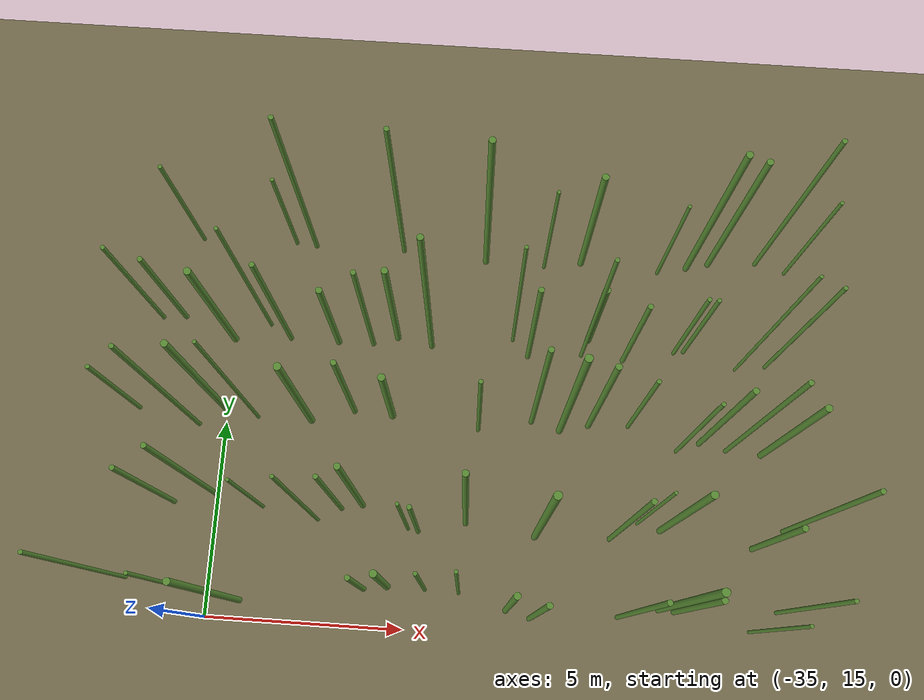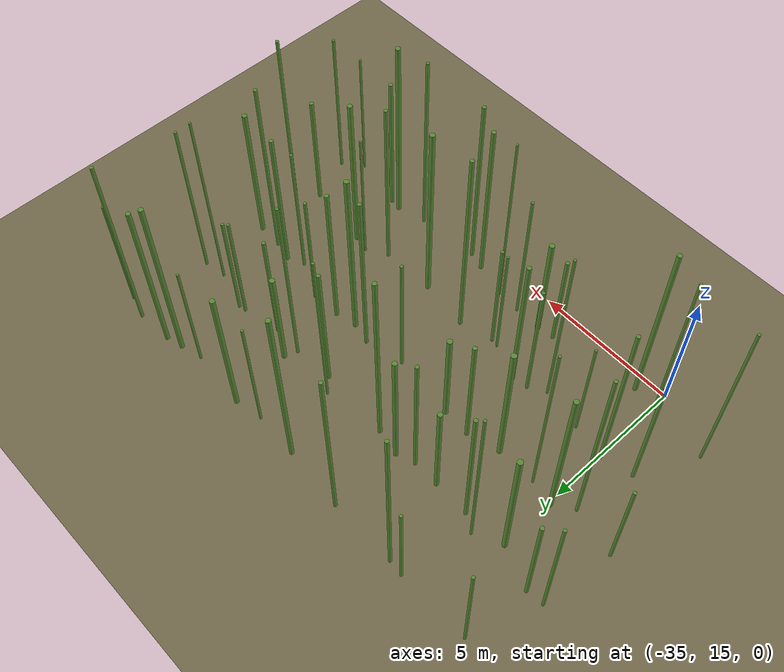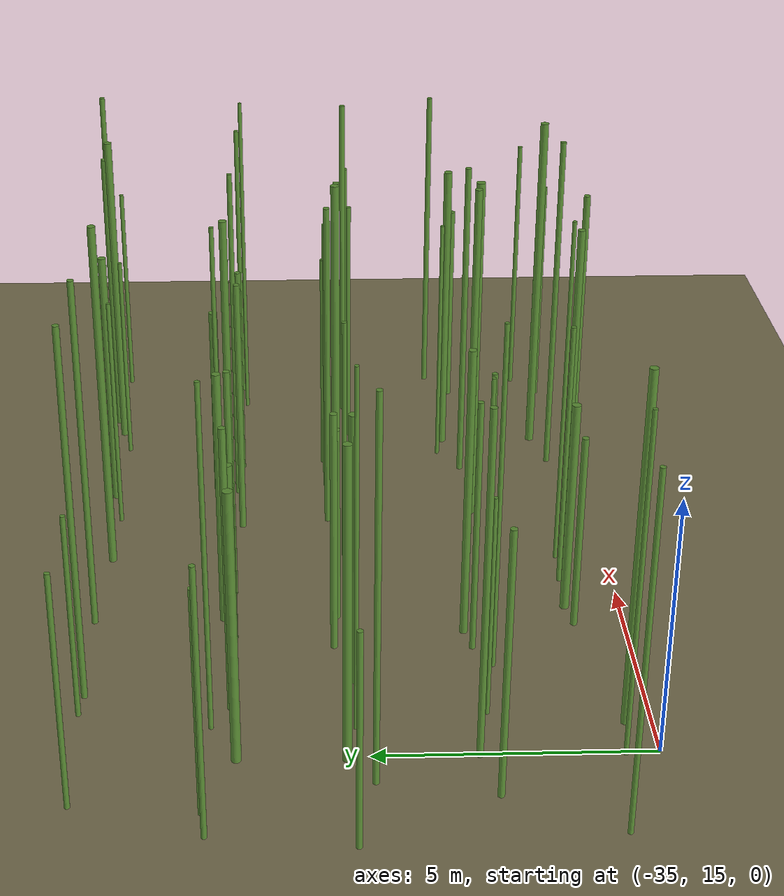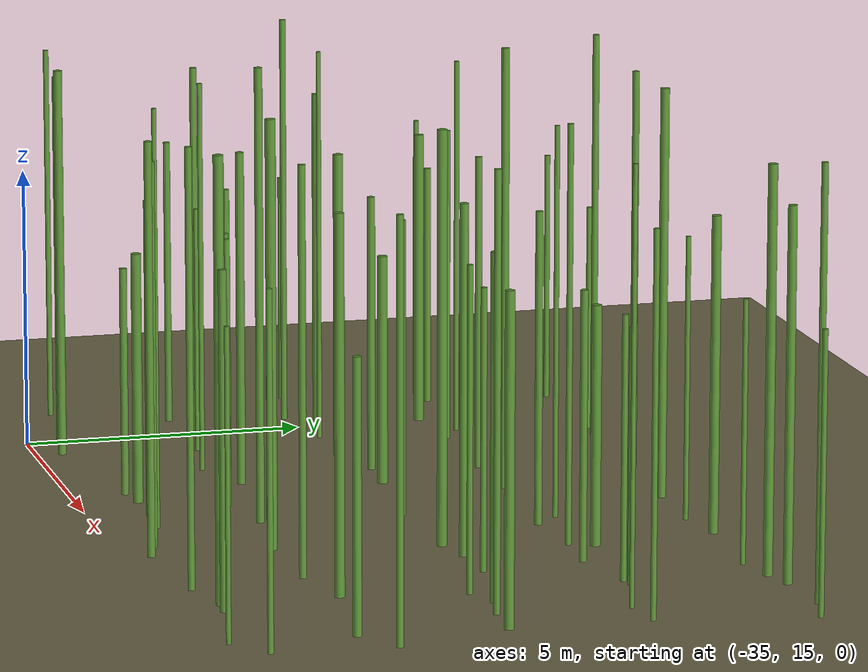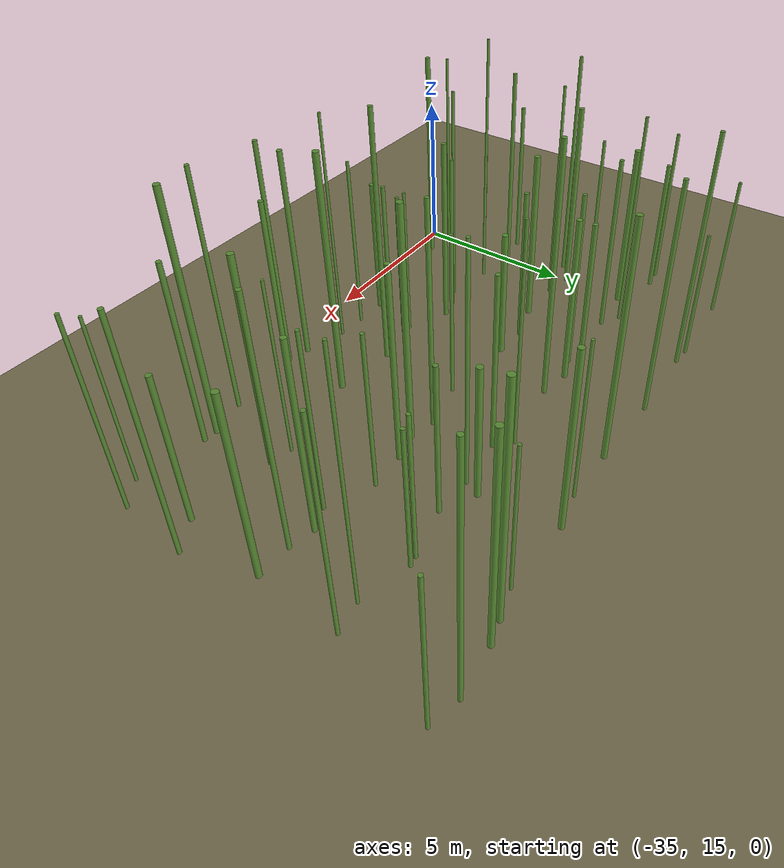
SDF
<sdf version="1.9">
 <world name="bamboo_field">
  <model name="ground_plane">
   <static>true</static>
   <link name="link">
    <collision name="collision">
     <geometry><plane><normal>0 0 1</normal><size>80.0 80.0</size></plane></geometry>
    </collision>
    <visual name="visual">
     <geometry><plane><normal>0 0 1</normal><size>80.0 80.0</size></plane></geometry>
     <material><diffuse>0.45 0.42 0.30 1</diffuse></material>
    </visual>
   </link>
  </model>
  <model name="bamboo_1408">
   <static>true</static>
   <pose>-37.101715336450795 15.8547783717082 3.393380171608686 0 0 0</pose>
   <link name="link">
    <collision name="collision">
     <geometry>
      <cylinder><radius>0.048034457998569986</radius><length>6.786760343217372</length></cylinder>
     </geometry>
    </collision>
    <visual name="visual">
     <geometry>
      <cylinder><radius>0.048034457998569986</radius><length>6.786760343217372</length></cylinder>
     </geometry>
     <material><diffuse>0.35 0.55 0.20 1</diffuse><specular>0.1 0.1 0.1 1</specular></material>
    </visual>
   </link>
  </model>
  <model name="bamboo_1409">
   <static>true</static>
   <pose>-35.04955720165409 15.5963601683068 3.3359249767435992 0 0 0</pose>
   <link name="link">
    <collision name="collision">
     <geometry>
      <cylinder><radius>0.043890435666860524</radius><length>6.6718499534871984</length></cylinder>
     </geometry>
    </collision>
    <visual name="visual">
     <geometry>
      <cylinder><radius>0.043890435666860524</radius><length>6.6718499534871984</length></cylinder>
     </geometry>
     <material><diffuse>0.35 0.55 0.20 1</diffuse><specular>0.1 0.1 0.1 1</specular></material>
    </visual>
   </link>
  </model>
  <model name="bamboo_1410">
   <static>true</static>
   <pose>-34.16500798220895 15.475101761687869 3.473438571887115 0 0 0</pose>
   <link name="link">
    <collision name="collision">
     <geometry>
      <cylinder><radius>0.07714181737051715</radius><length>6.94687714377423</length></cylinder>
     </geometry>
    </collision>
    <visual name="visual">
     <geometry>
      <cylinder><radius>0.07714181737051715</radius><length>6.94687714377423</length></cylinder>
     </geometry>
     <material><diffuse>0.35 0.55 0.20 1</diffuse><specular>0.1 0.1 0.1 1</specular></material>
    </visual>
   </link>
  </model>
  <model name="bamboo_1411">
   <static>true</static>
   <pose>-31.054002791299553 15.952504945509727 2.00735378247855 0 0 0</pose>
   <link name="link">
    <collision name="collision">
     <geometry><cylinder><radius>0.06603458491052912</radius><length>4.0147075649571</length></cylinder></geometry>
    </collision>
    <visual name="visual">
     <geometry><cylinder><radius>0.06603458491052912</radius><length>4.0147075649571</length></cylinder></geometry>
     <material><diffuse>0.35 0.55 0.20 1</diffuse><specular>0.1 0.1 0.1 1</specular></material>
    </visual>
   </link>
  </model>
  <model name="bamboo_1412">
   <static>true</static>
   <pose>-30.466071246106168 16.05506975819433 2.1948921089840825 0 0 0</pose>
   <link name="link">
    <collision name="collision">
     <geometry>
      <cylinder><radius>0.08847287557213641</radius><length>4.389784217968165</length></cylinder>
     </geometry>
    </collision>
    <visual name="visual">
     <geometry>
      <cylinder><radius>0.08847287557213641</radius><length>4.389784217968165</length></cylinder>
     </geometry>
     <material><diffuse>0.35 0.55 0.20 1</diffuse><specular>0.1 0.1 0.1 1</specular></material>
    </visual>
   </link>
  </model>
  <model name="bamboo_1413">
   <static>true</static>
   <pose>-29.50737685512812 16.036411182796982 2.75511314296927 0 0 0</pose>
   <link name="link">
    <collision name="collision">
     <geometry>
      <cylinder><radius>0.04830505140160894</radius><length>5.51022628593854</length></cylinder>
     </geometry>
    </collision>
    <visual name="visual">
     <geometry>
      <cylinder><radius>0.04830505140160894</radius><length>5.51022628593854</length></cylinder>
     </geometry>
     <material><diffuse>0.35 0.55 0.20 1</diffuse><specular>0.1 0.1 0.1 1</specular></material>
    </visual>
   </link>
  </model>
  <model name="bamboo_1414">
   <static>true</static>
   <pose>-28.65100505276548 15.99740580551228 3.6275586987107165 0 0 0</pose>
   <link name="link">
    <collision name="collision">
     <geometry>
      <cylinder><radius>0.04071855089450494</radius><length>7.255117397421433</length></cylinder>
     </geometry>
    </collision>
    <visual name="visual">
     <geometry>
      <cylinder><radius>0.04071855089450494</radius><length>7.255117397421433</length></cylinder>
     </geometry>
     <material><diffuse>0.35 0.55 0.20 1</diffuse><specular>0.1 0.1 0.1 1</specular></material>
    </visual>
   </link>
  </model>
  <model name="bamboo_1415">
   <static>true</static>
   <pose>-27.44230662131761 15.657018133559843 3.2978233545876767 0 0 0</pose>
   <link name="link">
    <collision name="collision">
     <geometry>
      <cylinder><radius>0.0749658573043088</radius><length>6.5956467091753535</length></cylinder>
     </geometry>
    </collision>
    <visual name="visual">
     <geometry>
      <cylinder><radius>0.0749658573043088</radius><length>6.5956467091753535</length></cylinder>
     </geometry>
     <material><diffuse>0.35 0.55 0.20 1</diffuse><specular>0.1 0.1 0.1 1</specular></material>
    </visual>
   </link>
  </model>
  <model name="bamboo_1416">
   <static>true</static>
   <pose>-26.841254372915067 15.492817029477424 3.5301622798417003 0 0 0</pose>
   <link name="link">
    <collision name="collision">
     <geometry>
      <cylinder><radius>0.06615849113988509</radius><length>7.060324559683401</length></cylinder>
     </geometry>
    </collision>
    <visual name="visual">
     <geometry>
      <cylinder><radius>0.06615849113988509</radius><length>7.060324559683401</length></cylinder>
     </geometry>
     <material><diffuse>0.35 0.55 0.20 1</diffuse><specular>0.1 0.1 0.1 1</specular></material>
    </visual>
   </link>
  </model>
  <model name="bamboo_1417">
   <static>true</static>
   <pose>-24.62932474360362 15.675992936185505 3.690183217221582 0 0 0</pose>
   <link name="link">
    <collision name="collision">
     <geometry>
      <cylinder><radius>0.0590781661439791</radius><length>7.380366434443164</length></cylinder>
     </geometry>
    </collision>
    <visual name="visual">
     <geometry>
      <cylinder><radius>0.0590781661439791</radius><length>7.380366434443164</length></cylinder>
     </geometry>
     <material><diffuse>0.35 0.55 0.20 1</diffuse><specular>0.1 0.1 0.1 1</specular></material>
    </visual>
   </link>
  </model>
  <model name="bamboo_1418">
   <static>true</static>
   <pose>-23.60125660296296 15.93390519977403 3.713994534302131 0 0 0</pose>
   <link name="link">
    <collision name="collision">
     <geometry>
      <cylinder><radius>0.08625677984427019</radius><length>7.427989068604262</length></cylinder>
     </geometry>
    </collision>
    <visual name="visual">
     <geometry>
      <cylinder><radius>0.08625677984427019</radius><length>7.427989068604262</length></cylinder>
     </geometry>
     <material><diffuse>0.35 0.55 0.20 1</diffuse><specular>0.1 0.1 0.1 1</specular></material>
    </visual>
   </link>
  </model>
  <model name="bamboo_1419">
   <static>true</static>
   <pose>-23.20900259163383 15.895956097034144 2.822559328432013 0 0 0</pose>
   <link name="link">
    <collision name="collision">
     <geometry>
      <cylinder><radius>0.07081301857996611</radius><length>5.645118656864026</length></cylinder>
     </geometry>
    </collision>
    <visual name="visual">
     <geometry>
      <cylinder><radius>0.07081301857996611</radius><length>5.645118656864026</length></cylinder>
     </geometry>
     <material><diffuse>0.35 0.55 0.20 1</diffuse><specular>0.1 0.1 0.1 1</specular></material>
    </visual>
   </link>
  </model>
  <model name="bamboo_1420">
   <static>true</static>
   <pose>-21.313504535351818 15.525762925586168 2.579808918412108 0 0 0</pose>
   <link name="link">
    <collision name="collision">
     <geometry>
      <cylinder><radius>0.041631776864718695</radius><length>5.159617836824216</length></cylinder>
     </geometry>
    </collision>
    <visual name="visual">
     <geometry>
      <cylinder><radius>0.041631776864718695</radius><length>5.159617836824216</length></cylinder>
     </geometry>
     <material><diffuse>0.35 0.55 0.20 1</diffuse><specular>0.1 0.1 0.1 1</specular></material>
    </visual>
   </link>
  </model>
  <model name="bamboo_1421">
   <static>true</static>
   <pose>-20.63899279113756 16.047078637410834 2.939148484923713 0 0 0</pose>
   <link name="link">
    <collision name="collision">
     <geometry>
      <cylinder><radius>0.04977801190925488</radius><length>5.878296969847426</length></cylinder>
     </geometry>
    </collision>
    <visual name="visual">
     <geometry>
      <cylinder><radius>0.04977801190925488</radius><length>5.878296969847426</length></cylinder>
     </geometry>
     <material><diffuse>0.35 0.55 0.20 1</diffuse><specular>0.1 0.1 0.1 1</specular></material>
    </visual>
   </link>
  </model>
  <model name="bamboo_1474">
   <static>true</static>
   <pose>-36.10866682844862 17.855147583934396 2.5880117891646863 0 0 0</pose>
   <link name="link">
    <collision name="collision">
     <geometry>
      <cylinder><radius>0.06112941860926584</radius><length>5.176023578329373</length></cylinder>
     </geometry>
    </collision>
    <visual name="visual">
     <geometry>
      <cylinder><radius>0.06112941860926584</radius><length>5.176023578329373</length></cylinder>
     </geometry>
     <material><diffuse>0.35 0.55 0.20 1</diffuse><specular>0.1 0.1 0.1 1</specular></material>
    </visual>
   </link>
  </model>
  <model name="bamboo_1475">
   <static>true</static>
   <pose>-35.02628479920142 18.110593370385274 3.3623210497181333 0 0 0</pose>
   <link name="link">
    <collision name="collision">
     <geometry>
      <cylinder><radius>0.06167826708748361</radius><length>6.724642099436267</length></cylinder>
     </geometry>
    </collision>
    <visual name="visual">
     <geometry>
      <cylinder><radius>0.06167826708748361</radius><length>6.724642099436267</length></cylinder>
     </geometry>
     <material><diffuse>0.35 0.55 0.20 1</diffuse><specular>0.1 0.1 0.1 1</specular></material>
    </visual>
   </link>
  </model>
  <model name="bamboo_1476">
   <static>true</static>
   <pose>-33.81809359945375 17.87346768689807 2.202063981823019 0 0 0</pose>
   <link name="link">
    <collision name="collision">
     <geometry>
      <cylinder><radius>0.04329236929570575</radius><length>4.404127963646038</length></cylinder>
     </geometry>
    </collision>
    <visual name="visual">
     <geometry>
      <cylinder><radius>0.04329236929570575</radius><length>4.404127963646038</length></cylinder>
     </geometry>
     <material><diffuse>0.35 0.55 0.20 1</diffuse><specular>0.1 0.1 0.1 1</specular></material>
    </visual>
   </link>
  </model>
  <model name="bamboo_1477">
   <static>true</static>
   <pose>-32.37462041364493 17.6271000331181 3.4678487453470925 0 0 0</pose>
   <link name="link">
    <collision name="collision">
     <geometry>
      <cylinder><radius>0.04506521359826933</radius><length>6.935697490694185</length></cylinder>
     </geometry>
    </collision>
    <visual name="visual">
     <geometry>
      <cylinder><radius>0.04506521359826933</radius><length>6.935697490694185</length></cylinder>
     </geometry>
     <material><diffuse>0.35 0.55 0.20 1</diffuse><specular>0.1 0.1 0.1 1</specular></material>
    </visual>
   </link>
  </model>
  <model name="bamboo_1478">
   <static>true</static>
   <pose>-31.79058825519699 17.953030757825008 2.5759850994624696 0 0 0</pose>
   <link name="link">
    <collision name="collision">
     <geometry>
      <cylinder><radius>0.05738165566209674</radius><length>5.151970198924939</length></cylinder>
     </geometry>
    </collision>
    <visual name="visual">
     <geometry>
      <cylinder><radius>0.05738165566209674</radius><length>5.151970198924939</length></cylinder>
     </geometry>
     <material><diffuse>0.35 0.55 0.20 1</diffuse><specular>0.1 0.1 0.1 1</specular></material>
    </visual>
   </link>
  </model>
  <model name="bamboo_1479">
   <static>true</static>
   <pose>-31.25658367445158 18.073980604922557 2.953516658232968 0 0 0</pose>
   <link name="link">
    <collision name="collision">
     <geometry>
      <cylinder><radius>0.0750235613517904</radius><length>5.907033316465936</length></cylinder>
     </geometry>
    </collision>
    <visual name="visual">
     <geometry>
      <cylinder><radius>0.0750235613517904</radius><length>5.907033316465936</length></cylinder>
     </geometry>
     <material><diffuse>0.35 0.55 0.20 1</diffuse><specular>0.1 0.1 0.1 1</specular></material>
    </visual>
   </link>
  </model>
  <model name="bamboo_1480">
   <static>true</static>
   <pose>-30.044954356825595 17.538596726959838 2.3746888240002884 0 0 0</pose>
   <link name="link">
    <collision name="collision">
     <geometry>
      <cylinder><radius>0.04347273169705475</radius><length>4.749377648000577</length></cylinder>
     </geometry>
    </collision>
    <visual name="visual">
     <geometry>
      <cylinder><radius>0.04347273169705475</radius><length>4.749377648000577</length></cylinder>
     </geometry>
     <material><diffuse>0.35 0.55 0.20 1</diffuse><specular>0.1 0.1 0.1 1</specular></material>
    </visual>
   </link>
  </model>
  <model name="bamboo_1481">
   <static>true</static>
   <pose>-29.78508634919071 17.49319711585882 2.3550301041360324 0 0 0</pose>
   <link name="link">
    <collision name="collision">
     <geometry>
      <cylinder><radius>0.05670270749212311</radius><length>4.710060208272065</length></cylinder>
     </geometry>
    </collision>
    <visual name="visual">
     <geometry>
      <cylinder><radius>0.05670270749212311</radius><length>4.710060208272065</length></cylinder>
     </geometry>
     <material><diffuse>0.35 0.55 0.20 1</diffuse><specular>0.1 0.1 0.1 1</specular></material>
    </visual>
   </link>
  </model>
  <model name="bamboo_1482">
   <static>true</static>
   <pose>-28.58987650338011 17.781128306973493 3.9390830617223704 0 0 0</pose>
   <link name="link">
    <collision name="collision">
     <geometry>
      <cylinder><radius>0.06970025776033983</radius><length>7.878166123444741</length></cylinder>
     </geometry>
    </collision>
    <visual name="visual">
     <geometry>
      <cylinder><radius>0.06970025776033983</radius><length>7.878166123444741</length></cylinder>
     </geometry>
     <material><diffuse>0.35 0.55 0.20 1</diffuse><specular>0.1 0.1 0.1 1</specular></material>
    </visual>
   </link>
  </model>
  <model name="bamboo_1483">
   <static>true</static>
   <pose>-26.803824527835705 17.55642648455285 3.6707180623455 0 0 0</pose>
   <link name="link">
    <collision name="collision">
     <geometry><cylinder><radius>0.0895206550846467</radius><length>7.341436124691</length></cylinder></geometry>
    </collision>
    <visual name="visual">
     <geometry><cylinder><radius>0.0895206550846467</radius><length>7.341436124691</length></cylinder></geometry>
     <material><diffuse>0.35 0.55 0.20 1</diffuse><specular>0.1 0.1 0.1 1</specular></material>
    </visual>
   </link>
  </model>
  <model name="bamboo_1484">
   <static>true</static>
   <pose>-24.89818368163201 17.61945082688035 3.4696300082025084 0 0 0</pose>
   <link name="link">
    <collision name="collision">
     <geometry>
      <cylinder><radius>0.06263081762591818</radius><length>6.939260016405017</length></cylinder>
     </geometry>
    </collision>
    <visual name="visual">
     <geometry>
      <cylinder><radius>0.06263081762591818</radius><length>6.939260016405017</length></cylinder>
     </geometry>
     <material><diffuse>0.35 0.55 0.20 1</diffuse><specular>0.1 0.1 0.1 1</specular></material>
    </visual>
   </link>
  </model>
  <model name="bamboo_1485">
   <static>true</static>
   <pose>-24.199331533329875 18.063273859692348 2.7052527561952773 0 0 0</pose>
   <link name="link">
    <collision name="collision">
     <geometry>
      <cylinder><radius>0.04067805268904175</radius><length>5.4105055123905545</length></cylinder>
     </geometry>
    </collision>
    <visual name="visual">
     <geometry>
      <cylinder><radius>0.04067805268904175</radius><length>5.4105055123905545</length></cylinder>
     </geometry>
     <material><diffuse>0.35 0.55 0.20 1</diffuse><specular>0.1 0.1 0.1 1</specular></material>
    </visual>
   </link>
  </model>
  <model name="bamboo_1486">
   <static>true</static>
   <pose>-23.607698273669023 17.919362078538033 3.191487081115765 0 0 0</pose>
   <link name="link">
    <collision name="collision">
     <geometry>
      <cylinder><radius>0.08510834136742991</radius><length>6.38297416223153</length></cylinder>
     </geometry>
    </collision>
    <visual name="visual">
     <geometry>
      <cylinder><radius>0.08510834136742991</radius><length>6.38297416223153</length></cylinder>
     </geometry>
     <material><diffuse>0.35 0.55 0.20 1</diffuse><specular>0.1 0.1 0.1 1</specular></material>
    </visual>
   </link>
  </model>
  <model name="bamboo_1487">
   <static>true</static>
   <pose>-21.255407266681296 17.610370631750857 2.2832662516414284 0 0 0</pose>
   <link name="link">
    <collision name="collision">
     <geometry>
      <cylinder><radius>0.07296834565478827</radius><length>4.566532503282857</length></cylinder>
     </geometry>
    </collision>
    <visual name="visual">
     <geometry>
      <cylinder><radius>0.07296834565478827</radius><length>4.566532503282857</length></cylinder>
     </geometry>
     <material><diffuse>0.35 0.55 0.20 1</diffuse><specular>0.1 0.1 0.1 1</specular></material>
    </visual>
   </link>
  </model>
  <model name="bamboo_1488">
   <static>true</static>
   <pose>-20.471795378234322 18.107683253226135 3.488730238218218 0 0 0</pose>
   <link name="link">
    <collision name="collision">
     <geometry>
      <cylinder><radius>0.05797099642690551</radius><length>6.977460476436436</length></cylinder>
     </geometry>
    </collision>
    <visual name="visual">
     <geometry>
      <cylinder><radius>0.05797099642690551</radius><length>6.977460476436436</length></cylinder>
     </geometry>
     <material><diffuse>0.35 0.55 0.20 1</diffuse><specular>0.1 0.1 0.1 1</specular></material>
    </visual>
   </link>
  </model>
  <model name="bamboo_1542">
   <static>true</static>
   <pose>-37.325079940649736 20.266061355207796 2.08348195409866 0 0 0</pose>
   <link name="link">
    <collision name="collision">
     <geometry><cylinder><radius>0.0535254203242547</radius><length>4.16696390819732</length></cylinder></geometry>
    </collision>
    <visual name="visual">
     <geometry><cylinder><radius>0.0535254203242547</radius><length>4.16696390819732</length></cylinder></geometry>
     <material><diffuse>0.35 0.55 0.20 1</diffuse><specular>0.1 0.1 0.1 1</specular></material>
    </visual>
   </link>
  </model>
  <model name="bamboo_1543">
   <static>true</static>
   <pose>-35.70983925834647 19.925748652955832 3.699667004889992 0 0 0</pose>
   <link name="link">
    <collision name="collision">
     <geometry>
      <cylinder><radius>0.055170917578615926</radius><length>7.399334009779984</length></cylinder>
     </geometry>
    </collision>
    <visual name="visual">
     <geometry>
      <cylinder><radius>0.055170917578615926</radius><length>7.399334009779984</length></cylinder>
     </geometry>
     <material><diffuse>0.35 0.55 0.20 1</diffuse><specular>0.1 0.1 0.1 1</specular></material>
    </visual>
   </link>
  </model>
  <model name="bamboo_1544">
   <static>true</static>
   <pose>-35.06551646354634 20.38809722084877 3.068371722223444 0 0 0</pose>
   <link name="link">
    <collision name="collision">
     <geometry>
      <cylinder><radius>0.08056815847611959</radius><length>6.136743444446888</length></cylinder>
     </geometry>
    </collision>
    <visual name="visual">
     <geometry>
      <cylinder><radius>0.08056815847611959</radius><length>6.136743444446888</length></cylinder>
     </geometry>
     <material><diffuse>0.35 0.55 0.20 1</diffuse><specular>0.1 0.1 0.1 1</specular></material>
    </visual>
   </link>
  </model>
  <model name="bamboo_1545">
   <static>true</static>
   <pose>-34.185744793373736 20.211541423483613 3.5313630309287873 0 0 0</pose>
   <link name="link">
    <collision name="collision">
     <geometry>
      <cylinder><radius>0.04260702087995588</radius><length>7.062726061857575</length></cylinder>
     </geometry>
    </collision>
    <visual name="visual">
     <geometry>
      <cylinder><radius>0.04260702087995588</radius><length>7.062726061857575</length></cylinder>
     </geometry>
     <material><diffuse>0.35 0.55 0.20 1</diffuse><specular>0.1 0.1 0.1 1</specular></material>
    </visual>
   </link>
  </model>
  <model name="bamboo_1546">
   <static>true</static>
   <pose>-32.791086650899906 20.21630575053072 2.7354173414675755 0 0 0</pose>
   <link name="link">
    <collision name="collision">
     <geometry>
      <cylinder><radius>0.08912672784311744</radius><length>5.470834682935151</length></cylinder>
     </geometry>
    </collision>
    <visual name="visual">
     <geometry>
      <cylinder><radius>0.08912672784311744</radius><length>5.470834682935151</length></cylinder>
     </geometry>
     <material><diffuse>0.35 0.55 0.20 1</diffuse><specular>0.1 0.1 0.1 1</specular></material>
    </visual>
   </link>
  </model>
  <model name="bamboo_1547">
   <static>true</static>
   <pose>-31.680236605949972 20.532573106231798 2.4542517723599895 0 0 0</pose>
   <link name="link">
    <collision name="collision">
     <geometry>
      <cylinder><radius>0.06943087369577945</radius><length>4.908503544719979</length></cylinder>
     </geometry>
    </collision>
    <visual name="visual">
     <geometry>
      <cylinder><radius>0.06943087369577945</radius><length>4.908503544719979</length></cylinder>
     </geometry>
     <material><diffuse>0.35 0.55 0.20 1</diffuse><specular>0.1 0.1 0.1 1</specular></material>
    </visual>
   </link>
  </model>
  <model name="bamboo_1548">
   <static>true</static>
   <pose>-30.682318457144515 20.479573693772693 2.0297971199938027 0 0 0</pose>
   <link name="link">
    <collision name="collision">
     <geometry>
      <cylinder><radius>0.08954693682557609</radius><length>4.0595942399876055</length></cylinder>
     </geometry>
    </collision>
    <visual name="visual">
     <geometry>
      <cylinder><radius>0.08954693682557609</radius><length>4.0595942399876055</length></cylinder>
     </geometry>
     <material><diffuse>0.35 0.55 0.20 1</diffuse><specular>0.1 0.1 0.1 1</specular></material>
    </visual>
   </link>
  </model>
  <model name="bamboo_1549">
   <static>true</static>
   <pose>-28.419161512778757 20.245829325223177 2.5848254431741866 0 0 0</pose>
   <link name="link">
    <collision name="collision">
     <geometry>
      <cylinder><radius>0.052212217225912516</radius><length>5.169650886348373</length></cylinder>
     </geometry>
    </collision>
    <visual name="visual">
     <geometry>
      <cylinder><radius>0.052212217225912516</radius><length>5.169650886348373</length></cylinder>
     </geometry>
     <material><diffuse>0.35 0.55 0.20 1</diffuse><specular>0.1 0.1 0.1 1</specular></material>
    </visual>
   </link>
  </model>
  <model name="bamboo_1550">
   <static>true</static>
   <pose>-27.044547299462174 20.551308974236637 3.4704372557017926 0 0 0</pose>
   <link name="link">
    <collision name="collision">
     <geometry>
      <cylinder><radius>0.06474646259295015</radius><length>6.940874511403585</length></cylinder>
     </geometry>
    </collision>
    <visual name="visual">
     <geometry>
      <cylinder><radius>0.06474646259295015</radius><length>6.940874511403585</length></cylinder>
     </geometry>
     <material><diffuse>0.35 0.55 0.20 1</diffuse><specular>0.1 0.1 0.1 1</specular></material>
    </visual>
   </link>
  </model>
  <model name="bamboo_1551">
   <static>true</static>
   <pose>-26.30142481375486 20.368289078905164 3.5604168109805263 0 0 0</pose>
   <link name="link">
    <collision name="collision">
     <geometry>
      <cylinder><radius>0.08707134938498348</radius><length>7.120833621961053</length></cylinder>
     </geometry>
    </collision>
    <visual name="visual">
     <geometry>
      <cylinder><radius>0.08707134938498348</radius><length>7.120833621961053</length></cylinder>
     </geometry>
     <material><diffuse>0.35 0.55 0.20 1</diffuse><specular>0.1 0.1 0.1 1</specular></material>
    </visual>
   </link>
  </model>
  <model name="bamboo_1552">
   <static>true</static>
   <pose>-25.55776725466135 20.54103613372522 3.0068908051308716 0 0 0</pose>
   <link name="link">
    <collision name="collision">
     <geometry>
      <cylinder><radius>0.07488858436845958</radius><length>6.013781610261743</length></cylinder>
     </geometry>
    </collision>
    <visual name="visual">
     <geometry>
      <cylinder><radius>0.07488858436845958</radius><length>6.013781610261743</length></cylinder>
     </geometry>
     <material><diffuse>0.35 0.55 0.20 1</diffuse><specular>0.1 0.1 0.1 1</specular></material>
    </visual>
   </link>
  </model>
  <model name="bamboo_1553">
   <static>true</static>
   <pose>-24.51737281640519 20.593895253625632 2.407109870196122 0 0 0</pose>
   <link name="link">
    <collision name="collision">
     <geometry>
      <cylinder><radius>0.05398919227661419</radius><length>4.814219740392244</length></cylinder>
     </geometry>
    </collision>
    <visual name="visual">
     <geometry>
      <cylinder><radius>0.05398919227661419</radius><length>4.814219740392244</length></cylinder>
     </geometry>
     <material><diffuse>0.35 0.55 0.20 1</diffuse><specular>0.1 0.1 0.1 1</specular></material>
    </visual>
   </link>
  </model>
  <model name="bamboo_1554">
   <static>true</static>
   <pose>-23.249684691148474 20.010111231893504 2.7447799701230338 0 0 0</pose>
   <link name="link">
    <collision name="collision">
     <geometry>
      <cylinder><radius>0.05053848159415575</radius><length>5.4895599402460675</length></cylinder>
     </geometry>
    </collision>
    <visual name="visual">
     <geometry>
      <cylinder><radius>0.05053848159415575</radius><length>5.4895599402460675</length></cylinder>
     </geometry>
     <material><diffuse>0.35 0.55 0.20 1</diffuse><specular>0.1 0.1 0.1 1</specular></material>
    </visual>
   </link>
  </model>
  <model name="bamboo_1555">
   <static>true</static>
   <pose>-22.6500195630263 20.25997361266872 2.9075259708321832 0 0 0</pose>
   <link name="link">
    <collision name="collision">
     <geometry>
      <cylinder><radius>0.07249540431953667</radius><length>5.8150519416643665</length></cylinder>
     </geometry>
    </collision>
    <visual name="visual">
     <geometry>
      <cylinder><radius>0.07249540431953667</radius><length>5.8150519416643665</length></cylinder>
     </geometry>
     <material><diffuse>0.35 0.55 0.20 1</diffuse><specular>0.1 0.1 0.1 1</specular></material>
    </visual>
   </link>
  </model>
  <model name="bamboo_1556">
   <static>true</static>
   <pose>-21.95733882762434 20.10610310692431 3.65435770101989 0 0 0</pose>
   <link name="link">
    <collision name="collision">
     <geometry>
      <cylinder><radius>0.05920883294210316</radius><length>7.30871540203978</length></cylinder>
     </geometry>
    </collision>
    <visual name="visual">
     <geometry>
      <cylinder><radius>0.05920883294210316</radius><length>7.30871540203978</length></cylinder>
     </geometry>
     <material><diffuse>0.35 0.55 0.20 1</diffuse><specular>0.1 0.1 0.1 1</specular></material>
    </visual>
   </link>
  </model>
  <model name="bamboo_1557">
   <static>true</static>
   <pose>-21.04149415866314 20.054749453905586 2.769326499760445 0 0 0</pose>
   <link name="link">
    <collision name="collision">
     <geometry>
      <cylinder><radius>0.08313864051647044</radius><length>5.53865299952089</length></cylinder>
     </geometry>
    </collision>
    <visual name="visual">
     <geometry>
      <cylinder><radius>0.08313864051647044</radius><length>5.53865299952089</length></cylinder>
     </geometry>
     <material><diffuse>0.35 0.55 0.20 1</diffuse><specular>0.1 0.1 0.1 1</specular></material>
    </visual>
   </link>
  </model>
  <model name="bamboo_1612">
   <static>true</static>
   <pose>-37.01045803470049 22.76553653910633 2.5842318336364 0 0 0</pose>
   <link name="link">
    <collision name="collision">
     <geometry>
      <cylinder><radius>0.051594666866600164</radius><length>5.1684636672728</length></cylinder>
     </geometry>
    </collision>
    <visual name="visual">
     <geometry>
      <cylinder><radius>0.051594666866600164</radius><length>5.1684636672728</length></cylinder>
     </geometry>
     <material><diffuse>0.35 0.55 0.20 1</diffuse><specular>0.1 0.1 0.1 1</specular></material>
    </visual>
   </link>
  </model>
  <model name="bamboo_1613">
   <static>true</static>
   <pose>-36.4144587828727 22.82444084783337 2.193066466136732 0 0 0</pose>
   <link name="link">
    <collision name="collision">
     <geometry>
      <cylinder><radius>0.06404795262791857</radius><length>4.386132932273464</length></cylinder>
     </geometry>
    </collision>
    <visual name="visual">
     <geometry>
      <cylinder><radius>0.06404795262791857</radius><length>4.386132932273464</length></cylinder>
     </geometry>
     <material><diffuse>0.35 0.55 0.20 1</diffuse><specular>0.1 0.1 0.1 1</specular></material>
    </visual>
   </link>
  </model>
  <model name="bamboo_1614">
   <static>true</static>
   <pose>-35.02743880419346 22.28888764129692 2.6507940925269757 0 0 0</pose>
   <link name="link">
    <collision name="collision">
     <geometry>
      <cylinder><radius>0.08846810715167705</radius><length>5.3015881850539515</length></cylinder>
     </geometry>
    </collision>
    <visual name="visual">
     <geometry>
      <cylinder><radius>0.08846810715167705</radius><length>5.3015881850539515</length></cylinder>
     </geometry>
     <material><diffuse>0.35 0.55 0.20 1</diffuse><specular>0.1 0.1 0.1 1</specular></material>
    </visual>
   </link>
  </model>
  <model name="bamboo_1615">
   <static>true</static>
   <pose>-34.11186400341333 22.74939146232855 3.393937161536355 0 0 0</pose>
   <link name="link">
    <collision name="collision">
     <geometry>
      <cylinder><radius>0.04567681467070377</radius><length>6.78787432307271</length></cylinder>
     </geometry>
    </collision>
    <visual name="visual">
     <geometry>
      <cylinder><radius>0.04567681467070377</radius><length>6.78787432307271</length></cylinder>
     </geometry>
     <material><diffuse>0.35 0.55 0.20 1</diffuse><specular>0.1 0.1 0.1 1</specular></material>
    </visual>
   </link>
  </model>
  <model name="bamboo_1616">
   <static>true</static>
   <pose>-33.54733964217037 22.411465380537226 2.824005837548106 0 0 0</pose>
   <link name="link">
    <collision name="collision">
     <geometry>
      <cylinder><radius>0.0644587188963066</radius><length>5.648011675096212</length></cylinder>
     </geometry>
    </collision>
    <visual name="visual">
     <geometry>
      <cylinder><radius>0.0644587188963066</radius><length>5.648011675096212</length></cylinder>
     </geometry>
     <material><diffuse>0.35 0.55 0.20 1</diffuse><specular>0.1 0.1 0.1 1</specular></material>
    </visual>
   </link>
  </model>
  <model name="bamboo_1617">
   <static>true</static>
   <pose>-32.26848764884797 22.390937892431822 2.121606522236128 0 0 0</pose>
   <link name="link">
    <collision name="collision">
     <geometry>
      <cylinder><radius>0.0791413947228364</radius><length>4.243213044472256</length></cylinder>
     </geometry>
    </collision>
    <visual name="visual">
     <geometry>
      <cylinder><radius>0.0791413947228364</radius><length>4.243213044472256</length></cylinder>
     </geometry>
     <material><diffuse>0.35 0.55 0.20 1</diffuse><specular>0.1 0.1 0.1 1</specular></material>
    </visual>
   </link>
  </model>
  <model name="bamboo_1618">
   <static>true</static>
   <pose>-31.343041254937177 22.395636278977015 2.797359023402622 0 0 0</pose>
   <link name="link">
    <collision name="collision">
     <geometry>
      <cylinder><radius>0.06209757731303545</radius><length>5.594718046805244</length></cylinder>
     </geometry>
    </collision>
    <visual name="visual">
     <geometry>
      <cylinder><radius>0.06209757731303545</radius><length>5.594718046805244</length></cylinder>
     </geometry>
     <material><diffuse>0.35 0.55 0.20 1</diffuse><specular>0.1 0.1 0.1 1</specular></material>
    </visual>
   </link>
  </model>
  <model name="bamboo_1619">
   <static>true</static>
   <pose>-30.70355654689434 22.608568203089764 2.617021299118345 0 0 0</pose>
   <link name="link">
    <collision name="collision">
     <geometry>
      <cylinder><radius>0.08092622922570576</radius><length>5.23404259823669</length></cylinder>
     </geometry>
    </collision>
    <visual name="visual">
     <geometry>
      <cylinder><radius>0.08092622922570576</radius><length>5.23404259823669</length></cylinder>
     </geometry>
     <material><diffuse>0.35 0.55 0.20 1</diffuse><specular>0.1 0.1 0.1 1</specular></material>
    </visual>
   </link>
  </model>
  <model name="bamboo_1620">
   <static>true</static>
   <pose>-29.794497789864764 22.43859313897242 3.895755588535305 0 0 0</pose>
   <link name="link">
    <collision name="collision">
     <geometry>
      <cylinder><radius>0.07126432527240947</radius><length>7.79151117707061</length></cylinder>
     </geometry>
    </collision>
    <visual name="visual">
     <geometry>
      <cylinder><radius>0.07126432527240947</radius><length>7.79151117707061</length></cylinder>
     </geometry>
     <material><diffuse>0.35 0.55 0.20 1</diffuse><specular>0.1 0.1 0.1 1</specular></material>
    </visual>
   </link>
  </model>
  <model name="bamboo_1621">
   <static>true</static>
   <pose>-27.654374604023634 22.744603650830868 3.4094610412908803 0 0 0</pose>
   <link name="link">
    <collision name="collision">
     <geometry>
      <cylinder><radius>0.04451263553665337</radius><length>6.818922082581761</length></cylinder>
     </geometry>
    </collision>
    <visual name="visual">
     <geometry>
      <cylinder><radius>0.04451263553665337</radius><length>6.818922082581761</length></cylinder>
     </geometry>
     <material><diffuse>0.35 0.55 0.20 1</diffuse><specular>0.1 0.1 0.1 1</specular></material>
    </visual>
   </link>
  </model>
  <model name="bamboo_1622">
   <static>true</static>
   <pose>-27.232869053220778 22.31770925317347 2.7241955032270053 0 0 0</pose>
   <link name="link">
    <collision name="collision">
     <geometry>
      <cylinder><radius>0.06593244992586351</radius><length>5.448391006454011</length></cylinder>
     </geometry>
    </collision>
    <visual name="visual">
     <geometry>
      <cylinder><radius>0.06593244992586351</radius><length>5.448391006454011</length></cylinder>
     </geometry>
     <material><diffuse>0.35 0.55 0.20 1</diffuse><specular>0.1 0.1 0.1 1</specular></material>
    </visual>
   </link>
  </model>
  <model name="bamboo_1623">
   <static>true</static>
   <pose>-25.820039752233996 22.43986569440508 3.602570789477291 0 0 0</pose>
   <link name="link">
    <collision name="collision">
     <geometry>
      <cylinder><radius>0.05146672341607045</radius><length>7.205141578954582</length></cylinder>
     </geometry>
    </collision>
    <visual name="visual">
     <geometry>
      <cylinder><radius>0.05146672341607045</radius><length>7.205141578954582</length></cylinder>
     </geometry>
     <material><diffuse>0.35 0.55 0.20 1</diffuse><specular>0.1 0.1 0.1 1</specular></material>
    </visual>
   </link>
  </model>
  <model name="bamboo_1624">
   <static>true</static>
   <pose>-25.657231497961877 22.86606285056028 2.072149944983154 0 0 0</pose>
   <link name="link">
    <collision name="collision">
     <geometry>
      <cylinder><radius>0.0870006898096356</radius><length>4.144299889966308</length></cylinder>
     </geometry>
    </collision>
    <visual name="visual">
     <geometry>
      <cylinder><radius>0.0870006898096356</radius><length>4.144299889966308</length></cylinder>
     </geometry>
     <material><diffuse>0.35 0.55 0.20 1</diffuse><specular>0.1 0.1 0.1 1</specular></material>
    </visual>
   </link>
  </model>
  <model name="bamboo_1625">
   <static>true</static>
   <pose>-24.71921656234186 22.368817882842603 2.3138910127146497 0 0 0</pose>
   <link name="link">
    <collision name="collision">
     <geometry>
      <cylinder><radius>0.06424499729360832</radius><length>4.627782025429299</length></cylinder>
     </geometry>
    </collision>
    <visual name="visual">
     <geometry>
      <cylinder><radius>0.06424499729360832</radius><length>4.627782025429299</length></cylinder>
     </geometry>
     <material><diffuse>0.35 0.55 0.20 1</diffuse><specular>0.1 0.1 0.1 1</specular></material>
    </visual>
   </link>
  </model>
  <model name="bamboo_1626">
   <static>true</static>
   <pose>-23.37244088511719 22.666507386560298 2.2472856612949945 0 0 0</pose>
   <link name="link">
    <collision name="collision">
     <geometry>
      <cylinder><radius>0.05362291229885645</radius><length>4.494571322589989</length></cylinder>
     </geometry>
    </collision>
    <visual name="visual">
     <geometry>
      <cylinder><radius>0.05362291229885645</radius><length>4.494571322589989</length></cylinder>
     </geometry>
     <material><diffuse>0.35 0.55 0.20 1</diffuse><specular>0.1 0.1 0.1 1</specular></material>
    </visual>
   </link>
  </model>
  <model name="bamboo_1627">
   <static>true</static>
   <pose>-23.11707796751531 22.713293224060966 2.1698332589347222 0 0 0</pose>
   <link name="link">
    <collision name="collision">
     <geometry>
      <cylinder><radius>0.05349993305727232</radius><length>4.3396665178694445</length></cylinder>
     </geometry>
    </collision>
    <visual name="visual">
     <geometry>
      <cylinder><radius>0.05349993305727232</radius><length>4.3396665178694445</length></cylinder>
     </geometry>
     <material><diffuse>0.35 0.55 0.20 1</diffuse><specular>0.1 0.1 0.1 1</specular></material>
    </visual>
   </link>
  </model>
  <model name="bamboo_1628">
   <static>true</static>
   <pose>-21.740436437842117 22.314107505274603 3.6605030378952317 0 0 0</pose>
   <link name="link">
    <collision name="collision">
     <geometry>
      <cylinder><radius>0.040737089195345334</radius><length>7.321006075790463</length></cylinder>
     </geometry>
    </collision>
    <visual name="visual">
     <geometry>
      <cylinder><radius>0.040737089195345334</radius><length>7.321006075790463</length></cylinder>
     </geometry>
     <material><diffuse>0.35 0.55 0.20 1</diffuse><specular>0.1 0.1 0.1 1</specular></material>
    </visual>
   </link>
  </model>
  <model name="bamboo_1629">
   <static>true</static>
   <pose>-20.950964588480037 22.434422927621174 3.2113831618324378 0 0 0</pose>
   <link name="link">
    <collision name="collision">
     <geometry>
      <cylinder><radius>0.04971420401017059</radius><length>6.4227663236648755</length></cylinder>
     </geometry>
    </collision>
    <visual name="visual">
     <geometry>
      <cylinder><radius>0.04971420401017059</radius><length>6.4227663236648755</length></cylinder>
     </geometry>
     <material><diffuse>0.35 0.55 0.20 1</diffuse><specular>0.1 0.1 0.1 1</specular></material>
    </visual>
   </link>
  </model>
  <model name="bamboo_1681">
   <static>true</static>
   <pose>-36.19310619285028 25.053439538708123 2.2796305636651346 0 0 0</pose>
   <link name="link">
    <collision name="collision">
     <geometry>
      <cylinder><radius>0.04932127553046115</radius><length>4.559261127330269</length></cylinder>
     </geometry>
    </collision>
    <visual name="visual">
     <geometry>
      <cylinder><radius>0.04932127553046115</radius><length>4.559261127330269</length></cylinder>
     </geometry>
     <material><diffuse>0.35 0.55 0.20 1</diffuse><specular>0.1 0.1 0.1 1</specular></material>
    </visual>
   </link>
  </model>
  <model name="bamboo_1684">
   <static>true</static>
   <pose>-33.660592157912546 25.112353588578372 2.0434999382348167 0 0 0</pose>
   <link name="link">
    <collision name="collision">
     <geometry>
      <cylinder><radius>0.04930803632439865</radius><length>4.086999876469633</length></cylinder>
     </geometry>
    </collision>
    <visual name="visual">
     <geometry>
      <cylinder><radius>0.04930803632439865</radius><length>4.086999876469633</length></cylinder>
     </geometry>
     <material><diffuse>0.35 0.55 0.20 1</diffuse><specular>0.1 0.1 0.1 1</specular></material>
    </visual>
   </link>
  </model>
  <model name="bamboo_1685">
   <static>true</static>
   <pose>-33.1198586711072 25.054091960167835 3.6681928223906266 0 0 0</pose>
   <link name="link">
    <collision name="collision">
     <geometry>
      <cylinder><radius>0.059966674027432526</radius><length>7.336385644781253</length></cylinder>
     </geometry>
    </collision>
    <visual name="visual">
     <geometry>
      <cylinder><radius>0.059966674027432526</radius><length>7.336385644781253</length></cylinder>
     </geometry>
     <material><diffuse>0.35 0.55 0.20 1</diffuse><specular>0.1 0.1 0.1 1</specular></material>
    </visual>
   </link>
  </model>
  <model name="bamboo_1687">
   <static>true</static>
   <pose>-30.733376137580343 25.07336670451825 3.548144895871892 0 0 0</pose>
   <link name="link">
    <collision name="collision">
     <geometry>
      <cylinder><radius>0.061049299249758646</radius><length>7.096289791743784</length></cylinder>
     </geometry>
    </collision>
    <visual name="visual">
     <geometry>
      <cylinder><radius>0.061049299249758646</radius><length>7.096289791743784</length></cylinder>
     </geometry>
     <material><diffuse>0.35 0.55 0.20 1</diffuse><specular>0.1 0.1 0.1 1</specular></material>
    </visual>
   </link>
  </model>
  <model name="bamboo_1690">
   <static>true</static>
   <pose>-28.501127055288315 24.908581072081216 3.6029792479589946 0 0 0</pose>
   <link name="link">
    <collision name="collision">
     <geometry>
      <cylinder><radius>0.07829115559960192</radius><length>7.205958495917989</length></cylinder>
     </geometry>
    </collision>
    <visual name="visual">
     <geometry>
      <cylinder><radius>0.07829115559960192</radius><length>7.205958495917989</length></cylinder>
     </geometry>
     <material><diffuse>0.35 0.55 0.20 1</diffuse><specular>0.1 0.1 0.1 1</specular></material>
    </visual>
   </link>
  </model>
  <model name="bamboo_1691">
   <static>true</static>
   <pose>-26.92638195186457 24.855958441518453 2.472367165353331 0 0 0</pose>
   <link name="link">
    <collision name="collision">
     <geometry>
      <cylinder><radius>0.04401876352153482</radius><length>4.944734330706662</length></cylinder>
     </geometry>
    </collision>
    <visual name="visual">
     <geometry>
      <cylinder><radius>0.04401876352153482</radius><length>4.944734330706662</length></cylinder>
     </geometry>
     <material><diffuse>0.35 0.55 0.20 1</diffuse><specular>0.1 0.1 0.1 1</specular></material>
    </visual>
   </link>
  </model>
  <model name="bamboo_1692">
   <static>true</static>
   <pose>-25.936673467396695 25.034139919624277 2.7485156209013577 0 0 0</pose>
   <link name="link">
    <collision name="collision">
     <geometry>
      <cylinder><radius>0.08228341980859954</radius><length>5.497031241802715</length></cylinder>
     </geometry>
    </collision>
    <visual name="visual">
     <geometry>
      <cylinder><radius>0.08228341980859954</radius><length>5.497031241802715</length></cylinder>
     </geometry>
     <material><diffuse>0.35 0.55 0.20 1</diffuse><specular>0.1 0.1 0.1 1</specular></material>
    </visual>
   </link>
  </model>
  <model name="bamboo_1694">
   <static>true</static>
   <pose>-23.86587340393428 24.886310003370436 2.257004787301372 0 0 0</pose>
   <link name="link">
    <collision name="collision">
     <geometry>
      <cylinder><radius>0.04479124314620119</radius><length>4.514009574602744</length></cylinder>
     </geometry>
    </collision>
    <visual name="visual">
     <geometry>
      <cylinder><radius>0.04479124314620119</radius><length>4.514009574602744</length></cylinder>
     </geometry>
     <material><diffuse>0.35 0.55 0.20 1</diffuse><specular>0.1 0.1 0.1 1</specular></material>
    </visual>
   </link>
  </model>
  <model name="bamboo_1695">
   <static>true</static>
   <pose>-23.093485528362297 25.068536867573965 3.4607442151409953 0 0 0</pose>
   <link name="link">
    <collision name="collision">
     <geometry>
      <cylinder><radius>0.08098955380721003</radius><length>6.921488430281991</length></cylinder>
     </geometry>
    </collision>
    <visual name="visual">
     <geometry>
      <cylinder><radius>0.08098955380721003</radius><length>6.921488430281991</length></cylinder>
     </geometry>
     <material><diffuse>0.35 0.55 0.20 1</diffuse><specular>0.1 0.1 0.1 1</specular></material>
    </visual>
   </link>
  </model>
  <model name="bamboo_1696">
   <static>true</static>
   <pose>-22.50685168710996 25.21880724952255 3.172857910795454 0 0 0</pose>
   <link name="link">
    <collision name="collision">
     <geometry>
      <cylinder><radius>0.07702145590269031</radius><length>6.345715821590908</length></cylinder>
     </geometry>
    </collision>
    <visual name="visual">
     <geometry>
      <cylinder><radius>0.07702145590269031</radius><length>6.345715821590908</length></cylinder>
     </geometry>
     <material><diffuse>0.35 0.55 0.20 1</diffuse><specular>0.1 0.1 0.1 1</specular></material>
    </visual>
   </link>
  </model>
  <model name="bamboo_1697">
   <static>true</static>
   <pose>-21.227503380800005 25.319020737371297 3.6464762836931874 0 0 0</pose>
   <link name="link">
    <collision name="collision">
     <geometry>
      <cylinder><radius>0.05699254754984972</radius><length>7.292952567386375</length></cylinder>
     </geometry>
    </collision>
    <visual name="visual">
     <geometry>
      <cylinder><radius>0.05699254754984972</radius><length>7.292952567386375</length></cylinder>
     </geometry>
     <material><diffuse>0.35 0.55 0.20 1</diffuse><specular>0.1 0.1 0.1 1</specular></material>
    </visual>
   </link>
  </model>
  <model name="bamboo_1698">
   <static>true</static>
   <pose>-20.441202906224504 25.097622055121725 2.375941098395704 0 0 0</pose>
   <link name="link">
    <collision name="collision">
     <geometry>
      <cylinder><radius>0.04690399501470837</radius><length>4.751882196791408</length></cylinder>
     </geometry>
    </collision>
    <visual name="visual">
     <geometry>
      <cylinder><radius>0.04690399501470837</radius><length>4.751882196791408</length></cylinder>
     </geometry>
     <material><diffuse>0.35 0.55 0.20 1</diffuse><specular>0.1 0.1 0.1 1</specular></material>
    </visual>
   </link>
  </model>
 </world>
</sdf>
